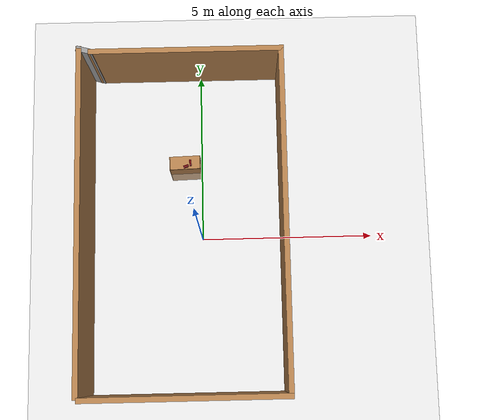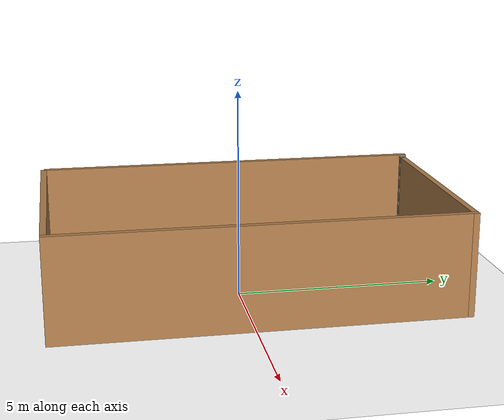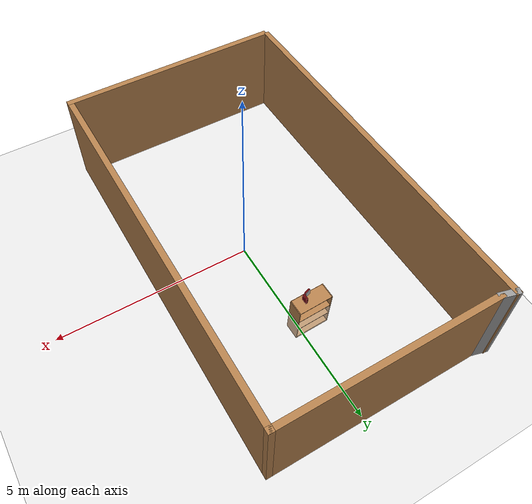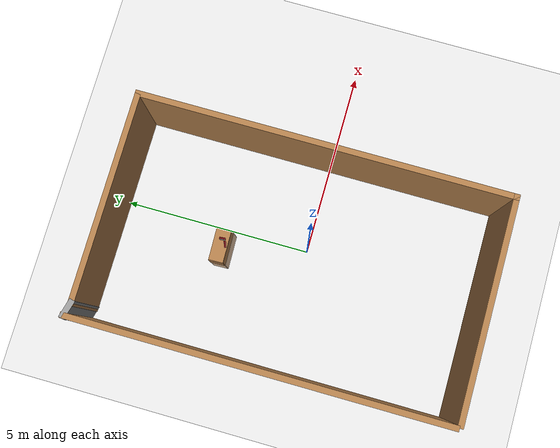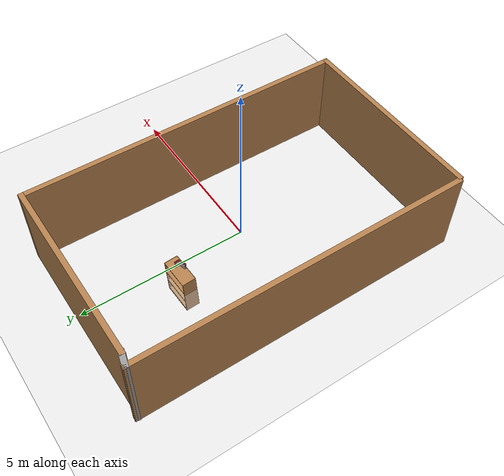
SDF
<sdf version="1.6">
 <world name="default">
  <light name="sun" type="directional">
   <pose>0 0 10 0 -0 0</pose>
   <diffuse>0.8 0.8 0.8 1</diffuse>
   <specular>0.1 0.1 0.1 1</specular>
   <attenuation>
    <range>1000</range>
    <constant>0.9</constant>
    <linear>0.01</linear>
    <quadratic>0.001</quadratic>
   </attenuation>
   <direction>-0.5 0.5 -1</direction>
  </light>
  <model name="ground_plane">
   <static>1</static>
   <link name="link">
    <collision name="collision">
     <geometry><plane><normal>0 0 1</normal><size>100 100</size></plane></geometry>
     <surface><friction><ode><mu>100</mu><mu2>50</mu2></ode></friction></surface>
    </collision>
    <visual name="visual">
     <cast_shadows>0</cast_shadows>
     <geometry><plane><normal>0 0 1</normal><size>100 100</size></plane></geometry>
     <material>
      <script><uri>file://media/materials/scripts/gazebo.material</uri><name>Gazebo/Grey</name></script>
     </material>
    </visual>
   </link>
  </model>
  <gravity>0 0 -9.8</gravity>
  <magnetic_field>6e-06 2.3e-05 -4.2e-05</magnetic_field>
  <atmosphere type="adiabatic"/>
  <physics name="default_physics" default="0" type="ode">
   <max_step_size>0.001</max_step_size>
   <real_time_factor>1</real_time_factor>
   <real_time_update_rate>1000</real_time_update_rate>
  </physics>
  <scene><ambient>0.4 0.4 0.4 1</ambient><background>0.7 0.7 0.7 1</background><shadows>1</shadows></scene>
  <spherical_coordinates>
   <surface_model>EARTH_WGS84</surface_model>
   <latitude_deg>0</latitude_deg>
   <longitude_deg>0</longitude_deg>
   <elevation>0</elevation>
   <heading_deg>0</heading_deg>
  </spherical_coordinates>
  <model name="Untitled">
   <pose>-0.487456 0.28794 0 0 -0 0</pose>
   <link name="Wall_4">
    <collision name="Wall_4_Collision">
     <geometry><box><size>5.75 0.15 2.5</size></box></geometry>
     <pose>0 0 1.25 0 -0 0</pose>
    </collision>
    <visual name="Wall_4_Visual">
     <pose>0 0 1.25 0 -0 0</pose>
     <geometry><box><size>5.75 0.15 2.5</size></box></geometry>
     <material>
      <script><uri>file://media/materials/scripts/gazebo.material</uri><name>Gazebo/Wood</name></script>
      <ambient>1 1 1 1</ambient>
     </material>
    </visual>
    <pose>0.052465 -4.85372 0 0 -0 0</pose>
   </link>
   <link name="Wall_5">
    <collision name="Wall_5_Collision">
     <geometry><box><size>9.75 0.15 2.5</size></box></geometry>
     <pose>0 0 1.25 0 -0 0</pose>
    </collision>
    <visual name="Wall_5_Visual">
     <pose>0 0 1.25 0 -0 0</pose>
     <geometry><box><size>9.75 0.15 2.5</size></box></geometry>
     <material>
      <script><uri>file://media/materials/scripts/gazebo.material</uri><name>Gazebo/Wood</name></script>
      <ambient>1 1 1 1</ambient>
     </material>
    </visual>
    <pose>2.85247 -0.053721 0 0 -0 1.5708</pose>
   </link>
   <link name="Wall_6">
    <collision name="Wall_6_Collision">
     <geometry><box><size>5.5 0.15 2.5</size></box></geometry>
     <pose>0 0 1.25 0 -0 0</pose>
    </collision>
    <visual name="Wall_6_Visual">
     <pose>0 0 1.25 0 -0 0</pose>
     <geometry><box><size>5.5 0.15 2.5</size></box></geometry>
     <material>
      <script><uri>file://media/materials/scripts/gazebo.material</uri><name>Gazebo/Wood</name></script>
      <ambient>1 1 1 1</ambient>
     </material>
    </visual>
    <pose>0.177465 4.74628 0 0 -0 3.14159</pose>
   </link>
   <link name="Wall_8">
    <collision name="Wall_8_Collision">
     <geometry><box><size>0.5 0.15 2.5</size></box></geometry>
     <pose>0 0 1.25 0 -0 0</pose>
    </collision>
    <visual name="Wall_8_Visual">
     <pose>0 0 1.25 0 -0 0</pose>
     <geometry><box><size>0.5 0.15 2.5</size></box></geometry>
     <material>
      <script><uri>file://media/materials/scripts/gazebo.material</uri><name>Gazebo/Grey</name></script>
      <ambient>1 1 1 1</ambient>
     </material>
    </visual>
    <pose>-2.66657 4.79157 0 0 -0 2.87979</pose>
   </link>
   <link name="Wall_9">
    <collision name="Wall_9_Collision">
     <geometry><box><size>9.75 0.15 2.5</size></box></geometry>
     <pose>0 0 1.25 0 -0 0</pose>
    </collision>
    <visual name="Wall_9_Visual">
     <pose>0 0 1.25 0 -0 0</pose>
     <geometry><box><size>9.75 0.15 2.5</size></box></geometry>
     <material>
      <script><uri>file://media/materials/scripts/gazebo.material</uri><name>Gazebo/Wood</name></script>
      <ambient>1 1 1 1</ambient>
     </material>
    </visual>
    <pose>-2.83561 0.036866 0 0 0 -1.5708</pose>
   </link>
   <static>1</static>
  </model>
  <model name="bookshelf">
   <static>1</static>
   <link name="link">
    <inertial><mass>1</mass></inertial>
    <collision name="back">
     <pose>0 0.005 0.6 0 -0 0</pose>
     <geometry><box><size>0.9 0.01 1.2</size></box></geometry>
    </collision>
    <visual name="visual1">
     <pose>0 0.005 0.6 0 -0 0</pose>
     <geometry><box><size>0.9 0.01 1.2</size></box></geometry>
     <material>
      <script><uri>file://media/materials/scripts/gazebo.material</uri><name>Gazebo/Wood</name></script>
     </material>
    </visual>
    <collision name="left_side">
     <pose>0.45 -0.195 0.6 0 -0 0</pose>
     <geometry><box><size>0.02 0.4 1.2</size></box></geometry>
    </collision>
    <visual name="visual2">
     <pose>0.45 -0.195 0.6 0 -0 0</pose>
     <geometry><box><size>0.02 0.4 1.2</size></box></geometry>
     <material>
      <script><uri>file://media/materials/scripts/gazebo.material</uri><name>Gazebo/Wood</name></script>
     </material>
    </visual>
    <collision name="right_side">
     <pose>-0.45 -0.195 0.6 0 -0 0</pose>
     <geometry><box><size>0.02 0.4 1.2</size></box></geometry>
    </collision>
    <visual name="visual3">
     <pose>-0.45 -0.195 0.6 0 -0 0</pose>
     <geometry><box><size>0.02 0.4 1.2</size></box></geometry>
     <material>
      <script><uri>file://media/materials/scripts/gazebo.material</uri><name>Gazebo/Wood</name></script>
     </material>
    </visual>
    <collision name="bottom">
     <pose>0 -0.195 0.03 0 -0 0</pose>
     <geometry><box><size>0.88 0.4 0.06</size></box></geometry>
    </collision>
    <visual name="visual4">
     <pose>0 -0.195 0.03 0 -0 0</pose>
     <geometry><box><size>0.88 0.4 0.06</size></box></geometry>
     <material>
      <script><uri>file://media/materials/scripts/gazebo.material</uri><name>Gazebo/Wood</name></script>
     </material>
    </visual>
    <collision name="top">
     <pose>0 -0.195 1.19 0 -0 0</pose>
     <geometry><box><size>0.88 0.4 0.02</size></box></geometry>
    </collision>
    <visual name="visual5">
     <pose>0 -0.195 1.19 0 -0 0</pose>
     <geometry><box><size>0.88 0.4 0.02</size></box></geometry>
     <material>
      <script><uri>file://media/materials/scripts/gazebo.material</uri><name>Gazebo/Wood</name></script>
     </material>
    </visual>
    <collision name="low_shelf">
     <pose>0 -0.195 0.43 0 -0 0</pose>
     <geometry><box><size>0.88 0.4 0.02</size></box></geometry>
    </collision>
    <visual name="visual6">
     <pose>0 -0.195 0.43 0 -0 0</pose>
     <geometry><box><size>0.88 0.4 0.02</size></box></geometry>
     <material>
      <script><uri>file://media/materials/scripts/gazebo.material</uri><name>Gazebo/Wood</name></script>
     </material>
    </visual>
    <collision name="high_shelf">
     <pose>0 -0.195 0.8 0 -0 0</pose>
     <geometry><box><size>0.88 0.4 0.02</size></box></geometry>
    </collision>
    <visual name="visual7">
     <pose>0 -0.195 0.8 0 -0 0</pose>
     <geometry><box><size>0.88 0.4 0.02</size></box></geometry>
     <material>
      <script><uri>file://media/materials/scripts/gazebo.material</uri><name>Gazebo/Wood</name></script>
     </material>
    </visual>
   </link>
   <pose>-0.492227 2.01389 -0.721155 0.046966 -0 -3.11199</pose>
  </model>
  <model name="biscuit_box">
   <link name="biscuit_box::link">
    <pose>0 0 0.025 0 -0 0</pose>
    <visual name="visual">
     <geometry><box><size>0.2 0.15 0.05</size></box></geometry>
     <material>
      <ambient>0.423 0.019 0.035 1</ambient>
      <diffuse>0.423 0.019 0.035 1</diffuse>
      <specular>0.01 0.01 0.01 1</specular>
      <emissive>0 0 0 1</emissive>
     </material>
    </visual>
    <collision name="collision"><geometry><box><size>0.1 0.1 0.15</size></box></geometry></collision>
   </link>
   <link name="link_1">
    <pose>0 0 0.05 0 -0 0</pose>
    <visual name="visual">
     <geometry><box><size>0.2 0.15 0.001</size></box></geometry>
     <material>
      <script>
       <uri>model://biscuit_box/materials/scripts</uri>
       <uri>model://biscuit_box/materials/textures</uri>
       <name>biscuit_pat</name>
      </script>
     </material>
    </visual>
    <collision name="collision"><geometry><box><size>0.1 0.1 0.15</size></box></geometry></collision>
   </link>
   <static>1</static>
   <pose>-0.306095 2.23433 0.56739 0.075337 -1.56172 -0.013863</pose>
  </model>
  <model name="biscuit_box_0">
   <link name="link">
    <pose>0 0 0.025 0 -0 0</pose>
    <visual name="visual">
     <geometry><box><size>0.2 0.15 0.05</size></box></geometry>
     <material>
      <ambient>0.423 0.019 0.035 1</ambient>
      <diffuse>0.423 0.019 0.035 1</diffuse>
      <specular>0.01 0.01 0.01 1</specular>
      <emissive>0 0 0 1</emissive>
     </material>
    </visual>
    <collision name="collision"><geometry><box><size>0.1 0.1 0.15</size></box></geometry></collision>
   </link>
   <link name="link_1">
    <pose>0 0 0.05 0 -0 0</pose>
    <visual name="visual">
     <geometry><box><size>0.2 0.15 0.001</size></box></geometry>
     <material>
      <script>
       <uri>model://biscuit_box/materials/scripts</uri>
       <uri>model://biscuit_box/materials/textures</uri>
       <name>biscuit_pat</name>
      </script>
     </material>
    </visual>
    <collision name="collision"><geometry><box><size>0.1 0.1 0.15</size></box></geometry></collision>
   </link>
   <static>1</static>
   <pose>-0.451108 2.09977 0.560981 -0.521574 -1.55536 -0.740057</pose>
  </model>
 </world>
</sdf>
